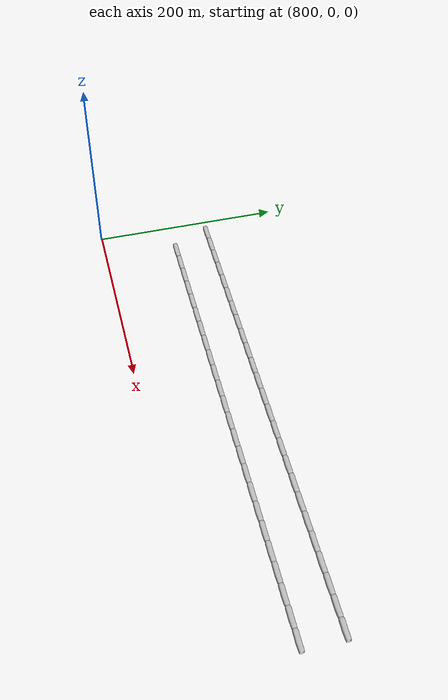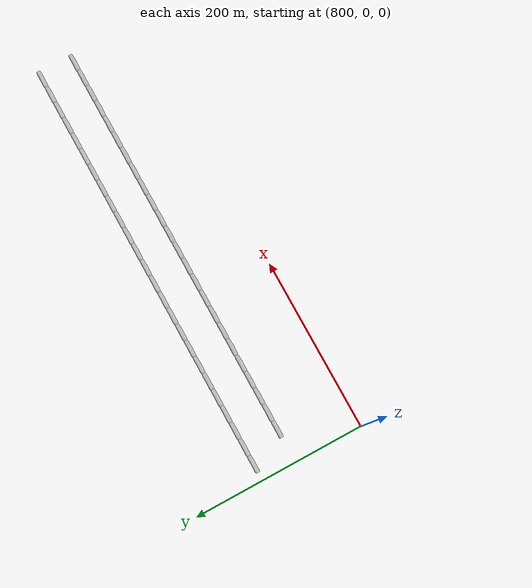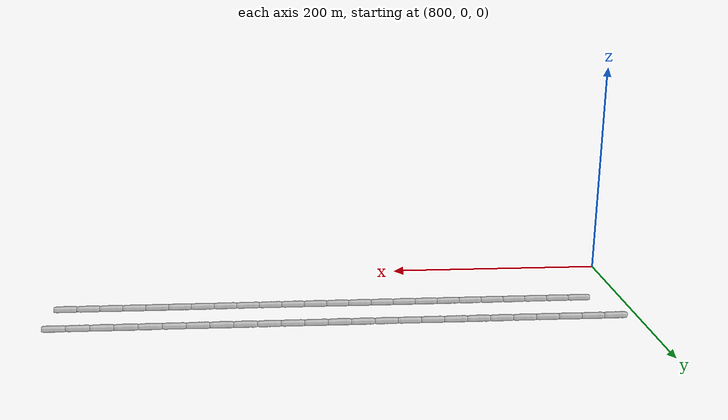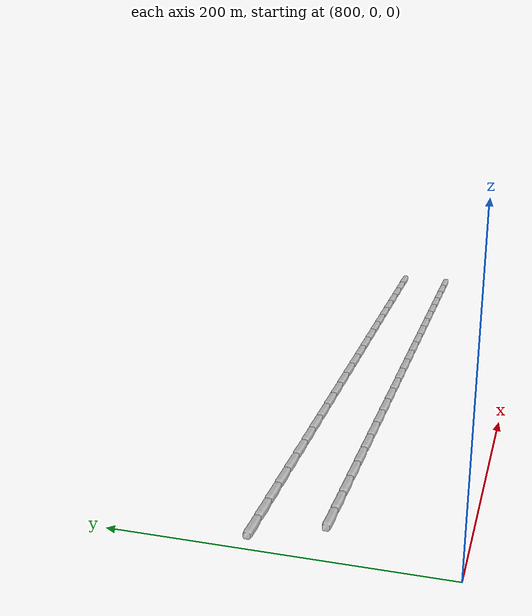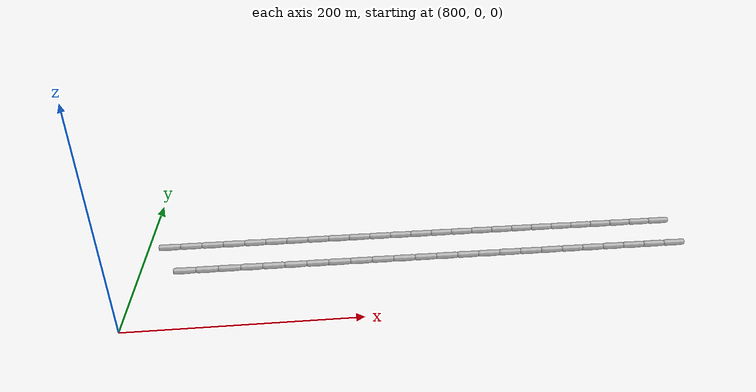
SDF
<sdf version="1.6">
 <world name="cave_8000_2">
  <include>
   <static>true</static>
   <name>cave_42_4</name>
   <pose>840 80 0 0 0 1.5707963267948966</pose>
   <uri>model://cave_straight_20m</uri>
  </include>
  <include>
   <static>true</static>
   <name>cave_43_4</name>
   <pose>860 80 0 0 0 1.5707963267948966</pose>
   <uri>model://cave_straight_20m</uri>
  </include>
  <include>
   <static>true</static>
   <name>cave_44_4</name>
   <pose>880 80 0 0 0 1.5707963267948966</pose>
   <uri>model://cave_straight_20m</uri>
  </include>
  <include>
   <static>true</static>
   <name>cave_45_4</name>
   <pose>900 80 0 0 0 1.5707963267948966</pose>
   <uri>model://cave_straight_20m</uri>
  </include>
  <include>
   <static>true</static>
   <name>cave_46_4</name>
   <pose>920 80 0 0 0 1.5707963267948966</pose>
   <uri>model://cave_straight_20m</uri>
  </include>
  <include>
   <static>true</static>
   <name>cave_47_4</name>
   <pose>940 80 0 0 0 1.5707963267948966</pose>
   <uri>model://cave_straight_20m</uri>
  </include>
  <include>
   <static>true</static>
   <name>cave_48_4</name>
   <pose>960 80 0 0 0 1.5707963267948966</pose>
   <uri>model://cave_straight_20m</uri>
  </include>
  <include>
   <static>true</static>
   <name>cave_49_4</name>
   <pose>980 80 0 0 0 1.5707963267948966</pose>
   <uri>model://cave_straight_20m</uri>
  </include>
  <include>
   <static>true</static>
   <name>cave_50_4</name>
   <pose>1000 80 0 0 0 1.5707963267948966</pose>
   <uri>model://cave_straight_20m</uri>
  </include>
  <include>
   <static>true</static>
   <name>cave_51_4</name>
   <pose>1020 80 0 0 0 1.5707963267948966</pose>
   <uri>model://cave_straight_20m</uri>
  </include>
  <include>
   <static>true</static>
   <name>cave_52_4</name>
   <pose>1040 80 0 0 0 1.5707963267948966</pose>
   <uri>model://cave_straight_20m</uri>
  </include>
  <include>
   <static>true</static>
   <name>cave_53_4</name>
   <pose>1060 80 0 0 0 1.5707963267948966</pose>
   <uri>model://cave_straight_20m</uri>
  </include>
  <include>
   <static>true</static>
   <name>cave_54_4</name>
   <pose>1080 80 0 0 0 1.5707963267948966</pose>
   <uri>model://cave_straight_20m</uri>
  </include>
  <include>
   <static>true</static>
   <name>cave_55_4</name>
   <pose>1100 80 0 0 0 1.5707963267948966</pose>
   <uri>model://cave_straight_20m</uri>
  </include>
  <include>
   <static>true</static>
   <name>cave_56_4</name>
   <pose>1120 80 0 0 0 1.5707963267948966</pose>
   <uri>model://cave_straight_20m</uri>
  </include>
  <include>
   <static>true</static>
   <name>cave_57_4</name>
   <pose>1140 80 0 0 0 1.5707963267948966</pose>
   <uri>model://cave_straight_20m</uri>
  </include>
  <include>
   <static>true</static>
   <name>cave_58_4</name>
   <pose>1160 80 0 0 0 1.5707963267948966</pose>
   <uri>model://cave_straight_20m</uri>
  </include>
  <include>
   <static>true</static>
   <name>cave_59_4</name>
   <pose>1180 80 0 0 0 1.5707963267948966</pose>
   <uri>model://cave_straight_20m</uri>
  </include>
  <include>
   <static>true</static>
   <name>cave_60_4</name>
   <pose>1200 80 0 0 0 1.5707963267948966</pose>
   <uri>model://cave_straight_20m</uri>
  </include>
  <include>
   <static>true</static>
   <name>cave_61_4</name>
   <pose>1220 80 0 0 0 1.5707963267948966</pose>
   <uri>model://cave_straight_20m</uri>
  </include>
  <include>
   <static>true</static>
   <name>cave_62_4</name>
   <pose>1240 80 0 0 0 1.5707963267948966</pose>
   <uri>model://cave_straight_20m</uri>
  </include>
  <include>
   <static>true</static>
   <name>cave_63_4</name>
   <pose>1260 80 0 0 0 1.5707963267948966</pose>
   <uri>model://cave_straight_20m</uri>
  </include>
  <include>
   <static>true</static>
   <name>cave_64_4</name>
   <pose>1280 80 0 0 0 1.5707963267948966</pose>
   <uri>model://cave_straight_20m</uri>
  </include>
  <include>
   <static>true</static>
   <name>cave_65_4</name>
   <pose>1300 80 0 0 0 1.5707963267948966</pose>
   <uri>model://cave_straight_20m</uri>
  </include>
  <include>
   <static>true</static>
   <name>cave_41_6</name>
   <pose>820 120 0 0 0 1.5707963267948966</pose>
   <uri>model://cave_straight_20m</uri>
  </include>
  <include>
   <static>true</static>
   <name>cave_42_6</name>
   <pose>840 120 0 0 0 1.5707963267948966</pose>
   <uri>model://cave_straight_20m</uri>
  </include>
  <include>
   <static>true</static>
   <name>cave_43_6</name>
   <pose>860 120 0 0 0 1.5707963267948966</pose>
   <uri>model://cave_straight_20m</uri>
  </include>
  <include>
   <static>true</static>
   <name>cave_44_6</name>
   <pose>880 120 0 0 0 1.5707963267948966</pose>
   <uri>model://cave_straight_20m</uri>
  </include>
  <include>
   <static>true</static>
   <name>cave_45_6</name>
   <pose>900 120 0 0 0 1.5707963267948966</pose>
   <uri>model://cave_straight_20m</uri>
  </include>
  <include>
   <static>true</static>
   <name>cave_46_6</name>
   <pose>920 120 0 0 0 1.5707963267948966</pose>
   <uri>model://cave_straight_20m</uri>
  </include>
  <include>
   <static>true</static>
   <name>cave_47_6</name>
   <pose>940 120 0 0 0 1.5707963267948966</pose>
   <uri>model://cave_straight_20m</uri>
  </include>
  <include>
   <static>true</static>
   <name>cave_48_6</name>
   <pose>960 120 0 0 0 1.5707963267948966</pose>
   <uri>model://cave_straight_20m</uri>
  </include>
  <include>
   <static>true</static>
   <name>cave_49_6</name>
   <pose>980 120 0 0 0 1.5707963267948966</pose>
   <uri>model://cave_straight_20m</uri>
  </include>
  <include>
   <static>true</static>
   <name>cave_50_6</name>
   <pose>1000 120 0 0 0 1.5707963267948966</pose>
   <uri>model://cave_straight_20m</uri>
  </include>
  <include>
   <static>true</static>
   <name>cave_51_6</name>
   <pose>1020 120 0 0 0 1.5707963267948966</pose>
   <uri>model://cave_straight_20m</uri>
  </include>
  <include>
   <static>true</static>
   <name>cave_52_6</name>
   <pose>1040 120 0 0 0 1.5707963267948966</pose>
   <uri>model://cave_straight_20m</uri>
  </include>
  <include>
   <static>true</static>
   <name>cave_53_6</name>
   <pose>1060 120 0 0 0 1.5707963267948966</pose>
   <uri>model://cave_straight_20m</uri>
  </include>
  <include>
   <static>true</static>
   <name>cave_54_6</name>
   <pose>1080 120 0 0 0 1.5707963267948966</pose>
   <uri>model://cave_straight_20m</uri>
  </include>
  <include>
   <static>true</static>
   <name>cave_55_6</name>
   <pose>1100 120 0 0 0 1.5707963267948966</pose>
   <uri>model://cave_straight_20m</uri>
  </include>
  <include>
   <static>true</static>
   <name>cave_56_6</name>
   <pose>1120 120 0 0 0 1.5707963267948966</pose>
   <uri>model://cave_straight_20m</uri>
  </include>
  <include>
   <static>true</static>
   <name>cave_57_6</name>
   <pose>1140 120 0 0 0 1.5707963267948966</pose>
   <uri>model://cave_straight_20m</uri>
  </include>
  <include>
   <static>true</static>
   <name>cave_58_6</name>
   <pose>1160 120 0 0 0 1.5707963267948966</pose>
   <uri>model://cave_straight_20m</uri>
  </include>
  <include>
   <static>true</static>
   <name>cave_59_6</name>
   <pose>1180 120 0 0 0 1.5707963267948966</pose>
   <uri>model://cave_straight_20m</uri>
  </include>
  <include>
   <static>true</static>
   <name>cave_60_6</name>
   <pose>1200 120 0 0 0 1.5707963267948966</pose>
   <uri>model://cave_straight_20m</uri>
  </include>
  <include>
   <static>true</static>
   <name>cave_61_6</name>
   <pose>1220 120 0 0 0 1.5707963267948966</pose>
   <uri>model://cave_straight_20m</uri>
  </include>
  <include>
   <static>true</static>
   <name>cave_62_6</name>
   <pose>1240 120 0 0 0 1.5707963267948966</pose>
   <uri>model://cave_straight_20m</uri>
  </include>
  <include>
   <static>true</static>
   <name>cave_63_6</name>
   <pose>1260 120 0 0 0 1.5707963267948966</pose>
   <uri>model://cave_straight_20m</uri>
  </include>
  <include>
   <static>true</static>
   <name>cave_64_6</name>
   <pose>1280 120 0 0 0 1.5707963267948966</pose>
   <uri>model://cave_straight_20m</uri>
  </include>
  <include>
   <static>true</static>
   <name>cave_65_6</name>
   <pose>1300 120 0 0 0 1.5707963267948966</pose>
   <uri>model://cave_straight_20m</uri>
  </include>
 </world>
</sdf>
